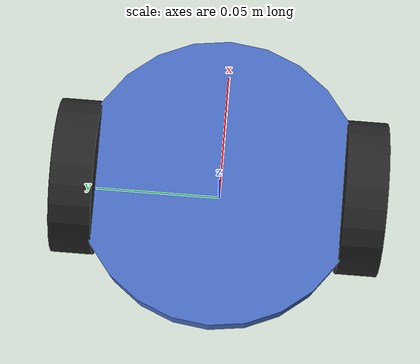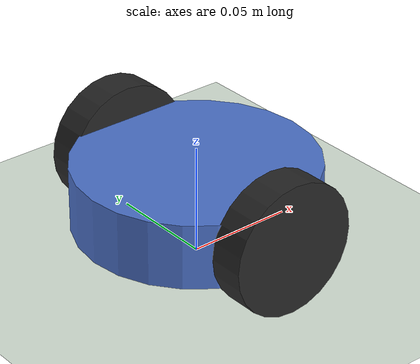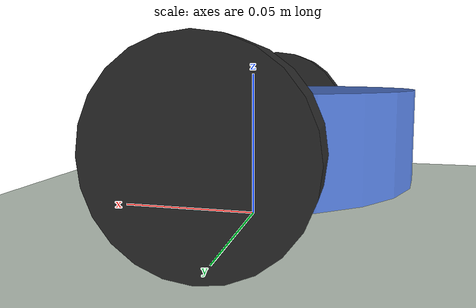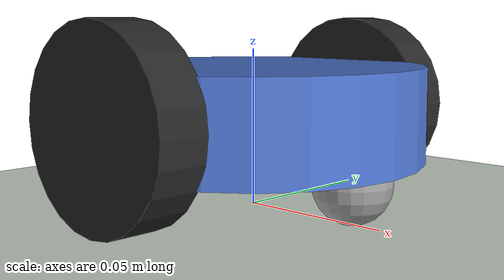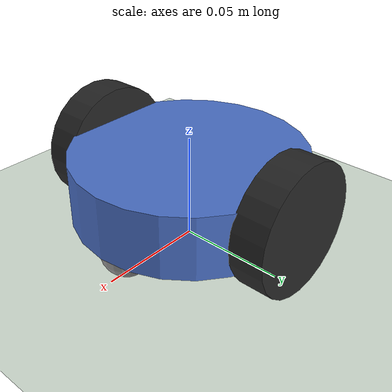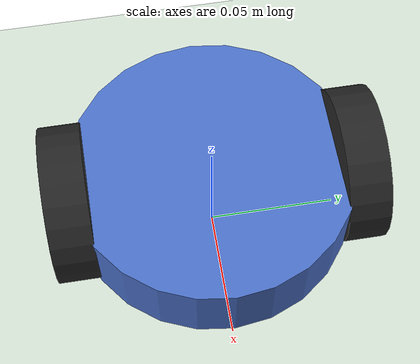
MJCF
<!-- models/roybot.xml : differential-drive robot, 2 wheels + caster -->
<mujoco model="roybot">
  <!-- implicitfast + wheel armature stabilize the low-inertia driven wheel DOF;
       plain Euler at dt=2ms makes the velocity-servo'd wheel explode. -->
  <option timestep="0.002" gravity="0 0 -9.81" integrator="implicitfast"/>
  <default>
    <!-- low wheel damping so the realistic 0.15 N.m torque limit (not artificial drag)
         is what caps acceleration; armature + implicitfast keep the wheel DOF stable. -->
    <joint damping="0.001" armature="0.001"/>
    <geom friction="1 0.1 0.01"/>
  </default>

  <worldbody>
    <geom name="floor" type="plane" size="5 5 0.1" rgba="0.85 0.9 0.85 1"
          friction="1 0.1 0.01"/>

    <body name="chassis" pos="0 0 0.03">
      <freejoint name="root"/>
      <!-- round 3216 chassis (~109 mm dia). mass ~0.36 kg body (+wheels+caster ~0.42 kg total);
           ESTIMATE - refine from the kitchen-scale weight of the assembled bot. -->
      <geom name="chassis_geom" type="cylinder" size="0.0545 0.015" mass="0.36"
            rgba="0.3 0.45 0.8 1"/>
      <site name="imu" pos="0 0 0" size="0.005"/>

      <body name="left_wheel" pos="0 0.055 0.0">
        <joint name="left_wheel_joint" type="hinge" axis="0 1 0"/>
        <geom type="cylinder" size="0.03 0.008" quat="0.7071 0.7071 0 0"
              mass="0.025" rgba="0.15 0.15 0.15 1" friction="1.2 0.1 0.01"/>
      </body>

      <body name="right_wheel" pos="0 -0.055 0.0">
        <joint name="right_wheel_joint" type="hinge" axis="0 1 0"/>
        <geom type="cylinder" size="0.03 0.008" quat="0.7071 0.7071 0 0"
              mass="0.025" rgba="0.15 0.15 0.15 1" friction="1.2 0.1 0.01"/>
      </body>

      <!-- caster: low-friction ball so the rear slides freely -->
      <body name="caster" pos="0.04 0 -0.018">
        <geom type="sphere" size="0.012" mass="0.005" rgba="0.6 0.6 0.6 1"
              friction="0.05 0.005 0.0001"/>
      </body>
    </body>
  </worldbody>

  <actuator>
    <!-- forcerange = real 100:1 N20 stall torque ~0.157 N.m (slightly derated). Encoders let the Pi
         close the wheel-speed loop, so this velocity actuator has a faithful hardware counterpart. -->
    <velocity name="left_motor"  joint="left_wheel_joint"  kv="5.0" forcerange="-0.15 0.15"/>
    <velocity name="right_motor" joint="right_wheel_joint" kv="5.0" forcerange="-0.15 0.15"/>
  </actuator>

  <sensor>
    <framepos    name="chassis_pos"    objtype="site" objname="imu"/>
    <framequat   name="chassis_quat"   objtype="site" objname="imu"/>
    <framelinvel name="chassis_linvel" objtype="site" objname="imu"/>
    <frameangvel name="chassis_angvel" objtype="site" objname="imu"/>
  </sensor>
</mujoco>
